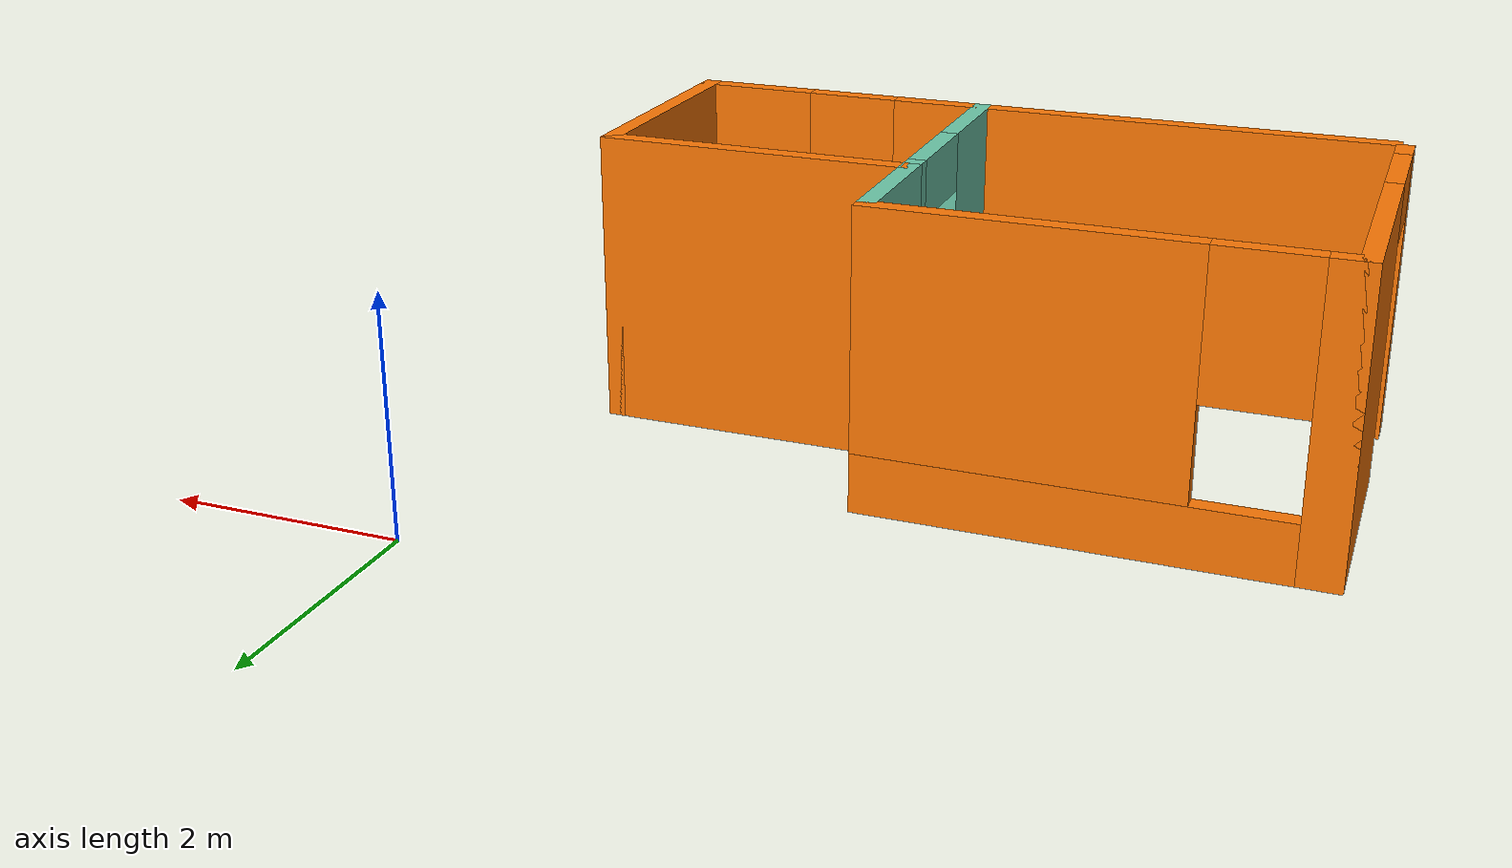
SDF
<?xml version='1.0'?>
<sdf version='1.7'>
  <model name='my_world'>
    <pose>-3.3775 -2.5275 0 0 -0 0</pose>
    <link name='Wall_0'>
      <pose>-3.3025 -0.8025 0 0 -0 1.5708</pose>
      <visual name='Wall_0_Visual_0'>
        <pose>-1.4725 0 1.25 0 -0 0</pose>
        <geometry>
          <box>
            <size>0.305 0.15 2.5</size>
          </box>
        </geometry>
        <material>
          <script>
            <uri>file://media/materials/scripts/gazebo.material</uri>
            <name>Gazebo/Grey</name>
          </script>
          <ambient>0.996078 0.47451 0.0196078 1</ambient>
        </material>
        <meta>
          <layer>0</layer>
        </meta>
      </visual>
      <collision name='Wall_0_Collision_0'>
        <geometry>
          <box>
            <size>0.305 0.15 2.5</size>
          </box>
        </geometry>
        <pose>-1.4725 0 1.25 0 -0 0</pose>
      </collision>
      <visual name='Wall_0_Visual_1'>
        <pose>0.6025 0 1.25 0 -0 0</pose>
        <geometry>
          <box>
            <size>2.045 0.15 2.5</size>
          </box>
        </geometry>
        <material>
          <script>
            <uri>file://media/materials/scripts/gazebo.material</uri>
            <name>Gazebo/Grey</name>
          </script>
          <ambient>0.996078 0.47451 0.0196078 1</ambient>
        </material>
        <meta>
          <layer>0</layer>
        </meta>
      </visual>
      <collision name='Wall_0_Collision_1'>
        <geometry>
          <box>
            <size>2.045 0.15 2.5</size>
          </box>
        </geometry>
        <pose>0.6025 0 1.25 0 -0 0</pose>
      </collision>
      <visual name='Wall_0_Visual_2'>
        <pose>-0.87 0 2.25 0 -0 0</pose>
        <geometry>
          <box>
            <size>0.9 0.15 0.5</size>
          </box>
        </geometry>
        <material>
          <script>
            <uri>file://media/materials/scripts/gazebo.material</uri>
            <name>Gazebo/Grey</name>
          </script>
          <ambient>0.996078 0.47451 0.0196078 1</ambient>
        </material>
        <meta>
          <layer>0</layer>
        </meta>
      </visual>
      <collision name='Wall_0_Collision_2'>
        <geometry>
          <box>
            <size>0.9 0.15 0.5</size>
          </box>
        </geometry>
        <pose>-0.87 0 2.25 0 -0 0</pose>
      </collision>
    </link>
    <link name='Wall_1'>
      <pose>-1.5025 0.7475 0 0 -0 0</pose>
      <visual name='Wall_1_Visual_0'>
        <pose>-1.7025 0 1.25 0 -0 0</pose>
        <geometry>
          <box>
            <size>0.345 0.15 2.5</size>
          </box>
        </geometry>
        <material>
          <script>
            <uri>file://media/materials/scripts/gazebo.material</uri>
            <name>Gazebo/Grey</name>
          </script>
          <ambient>0.996078 0.47451 0.0196078 1</ambient>
        </material>
        <meta>
          <layer>0</layer>
        </meta>
      </visual>
      <collision name='Wall_1_Collision_0'>
        <geometry>
          <box>
            <size>0.345 0.15 2.5</size>
          </box>
        </geometry>
        <pose>-1.7025 0 1.25 0 -0 0</pose>
      </collision>
      <visual name='Wall_1_Visual_1'>
        <pose>0.1725 0 0.25 0 -0 0</pose>
        <geometry>
          <box>
            <size>3.405 0.15 0.5</size>
          </box>
        </geometry>
        <material>
          <script>
            <uri>file://media/materials/scripts/gazebo.material</uri>
            <name>Gazebo/Grey</name>
          </script>
          <ambient>0.996078 0.47451 0.0196078 1</ambient>
        </material>
        <meta>
          <layer>0</layer>
        </meta>
      </visual>
      <collision name='Wall_1_Collision_1'>
        <geometry>
          <box>
            <size>3.405 0.15 0.5</size>
          </box>
        </geometry>
        <pose>0.1725 0 0.25 0 -0 0</pose>
      </collision>
      <visual name='Wall_1_Visual_2'>
        <pose>0.5725 0 1.5 0 -0 0</pose>
        <geometry>
          <box>
            <size>2.605 0.15 2</size>
          </box>
        </geometry>
        <material>
          <script>
            <uri>file://media/materials/scripts/gazebo.material</uri>
            <name>Gazebo/Grey</name>
          </script>
          <ambient>0.996078 0.47451 0.0196078 1</ambient>
        </material>
        <meta>
          <layer>0</layer>
        </meta>
      </visual>
      <collision name='Wall_1_Collision_2'>
        <geometry>
          <box>
            <size>2.605 0.15 2</size>
          </box>
        </geometry>
        <pose>0.5725 0 1.5 0 -0 0</pose>
      </collision>
      <visual name='Wall_1_Visual_3'>
        <pose>-1.13 0 1.9 0 -0 0</pose>
        <geometry>
          <box>
            <size>0.8 0.15 1.2</size>
          </box>
        </geometry>
        <material>
          <script>
            <uri>file://media/materials/scripts/gazebo.material</uri>
            <name>Gazebo/Grey</name>
          </script>
          <ambient>0.996078 0.47451 0.0196078 1</ambient>
        </material>
        <meta>
          <layer>0</layer>
        </meta>
      </visual>
      <collision name='Wall_1_Collision_3'>
        <geometry>
          <box>
            <size>0.8 0.15 1.2</size>
          </box>
        </geometry>
        <pose>-1.13 0 1.9 0 -0 0</pose>
      </collision>
    </link>
    <link name='Wall_2'>
      <collision name='Wall_2_Collision'>
        <geometry>
          <box>
            <size>1.25 0.15 2.5</size>
          </box>
        </geometry>
        <pose>0 0 1.25 0 -0 0</pose>
      </collision>
      <visual name='Wall_2_Visual'>
        <pose>0 0 1.25 0 -0 0</pose>
        <geometry>
          <box>
            <size>1.25 0.15 2.5</size>
          </box>
        </geometry>
        <material>
          <script>
            <uri>file://media/materials/scripts/gazebo.material</uri>
            <name>Gazebo/Grey</name>
          </script>
          <ambient>0.435294 0.796078 0.67451 1</ambient>
        </material>
        <meta>
          <layer>0</layer>
        </meta>
      </visual>
      <pose>0.2975 0.1975 0 0 -0 -1.5708</pose>
    </link>
    <link name='Wall_3'>
      <collision name='Wall_3_Collision'>
        <geometry>
          <box>
            <size>2.75 0.15 2.5</size>
          </box>
        </geometry>
        <pose>0 0 1.25 0 -0 0</pose>
      </collision>
      <visual name='Wall_3_Visual'>
        <pose>0 0 1.25 0 -0 0</pose>
        <geometry>
          <box>
            <size>2.75 0.15 2.5</size>
          </box>
        </geometry>
        <material>
          <script>
            <uri>file://media/materials/scripts/gazebo.material</uri>
            <name>Gazebo/Grey</name>
          </script>
          <ambient>0.996078 0.47451 0.0196078 1</ambient>
        </material>
        <meta>
          <layer>0</layer>
        </meta>
      </visual>
      <pose>1.5975 -0.3525 0 0 -0 0</pose>
    </link>
    <link name='Wall_4'>
      <collision name='Wall_4_Collision'>
        <geometry>
          <box>
            <size>2.25 0.15 2.5</size>
          </box>
        </geometry>
        <pose>0 0 1.25 0 -0 0</pose>
      </collision>
      <visual name='Wall_4_Visual'>
        <pose>0 0 1.25 0 -0 0</pose>
        <geometry>
          <box>
            <size>2.25 0.15 2.5</size>
          </box>
        </geometry>
        <material>
          <script>
            <uri>file://media/materials/scripts/gazebo.material</uri>
            <name>Gazebo/Grey</name>
          </script>
          <ambient>0.996078 0.47451 0.0196078 1</ambient>
        </material>
        <meta>
          <layer>0</layer>
        </meta>
      </visual>
      <pose>2.8975 -1.4025 0 0 -0 -1.5708</pose>
    </link>
    <link name='Wall_5'>
      <pose>-0.1525 -2.4525 0 0 -0 3.14159</pose>
      <visual name='Wall_5_Visual_0'>
        <pose>-2.5825 0 1.25 0 -0 0</pose>
        <geometry>
          <box>
            <size>1.085 0.15 2.5</size>
          </box>
        </geometry>
        <material>
          <script>
            <uri>file://media/materials/scripts/gazebo.material</uri>
            <name>Gazebo/Grey</name>
          </script>
          <ambient>0.996078 0.47451 0.0196078 1</ambient>
        </material>
        <meta>
          <layer>0</layer>
        </meta>
      </visual>
      <collision name='Wall_5_Collision_0'>
        <geometry>
          <box>
            <size>1.085 0.15 2.5</size>
          </box>
        </geometry>
        <pose>-2.5825 0 1.25 0 -0 0</pose>
      </collision>
      <visual name='Wall_5_Visual_1'>
        <pose>0.5425 0 0.25 0 -0 0</pose>
        <geometry>
          <box>
            <size>5.165 0.15 0.5</size>
          </box>
        </geometry>
        <material>
          <script>
            <uri>file://media/materials/scripts/gazebo.material</uri>
            <name>Gazebo/Grey</name>
          </script>
          <ambient>0.996078 0.47451 0.0196078 1</ambient>
        </material>
        <meta>
          <layer>0</layer>
        </meta>
      </visual>
      <collision name='Wall_5_Collision_1'>
        <geometry>
          <box>
            <size>5.165 0.15 0.5</size>
          </box>
        </geometry>
        <pose>0.5425 0 0.25 0 -0 0</pose>
      </collision>
      <visual name='Wall_5_Visual_2'>
        <pose>0.9425 0 1.5 0 -0 0</pose>
        <geometry>
          <box>
            <size>4.365 0.15 2</size>
          </box>
        </geometry>
        <material>
          <script>
            <uri>file://media/materials/scripts/gazebo.material</uri>
            <name>Gazebo/Grey</name>
          </script>
          <ambient>0.996078 0.47451 0.0196078 1</ambient>
        </material>
        <meta>
          <layer>0</layer>
        </meta>
      </visual>
      <collision name='Wall_5_Collision_2'>
        <geometry>
          <box>
            <size>4.365 0.15 2</size>
          </box>
        </geometry>
        <pose>0.9425 0 1.5 0 -0 0</pose>
      </collision>
      <visual name='Wall_5_Visual_3'>
        <pose>-1.64 0 1.9 0 -0 0</pose>
        <geometry>
          <box>
            <size>0.8 0.15 1.2</size>
          </box>
        </geometry>
        <material>
          <script>
            <uri>file://media/materials/scripts/gazebo.material</uri>
            <name>Gazebo/Grey</name>
          </script>
          <ambient>0.996078 0.47451 0.0196078 1</ambient>
        </material>
        <meta>
          <layer>0</layer>
        </meta>
      </visual>
      <collision name='Wall_5_Collision_3'>
        <geometry>
          <box>
            <size>0.8 0.15 1.2</size>
          </box>
        </geometry>
        <pose>-1.64 0 1.9 0 -0 0</pose>
      </collision>
    </link>
    <link name='Wall_7'>
      <pose>0.2975 -1.4025 0 0 -0 -1.5708</pose>
      <visual name='Wall_7_Visual_0'>
        <pose>-0.9875 0 1.25 0 -0 0</pose>
        <geometry>
          <box>
            <size>0.275 0.15 2.5</size>
          </box>
        </geometry>
        <material>
          <script>
            <uri>file://media/materials/scripts/gazebo.material</uri>
            <name>Gazebo/Grey</name>
          </script>
          <ambient>0.435294 0.796078 0.67451 1</ambient>
        </material>
        <meta>
          <layer>0</layer>
        </meta>
      </visual>
      <collision name='Wall_7_Collision_0'>
        <geometry>
          <box>
            <size>0.275 0.15 2.5</size>
          </box>
        </geometry>
        <pose>-0.9875 0 1.25 0 -0 0</pose>
      </collision>
      <visual name='Wall_7_Visual_1'>
        <pose>0.5875 0 1.25 0 -0 0</pose>
        <geometry>
          <box>
            <size>1.075 0.15 2.5</size>
          </box>
        </geometry>
        <material>
          <script>
            <uri>file://media/materials/scripts/gazebo.material</uri>
            <name>Gazebo/Grey</name>
          </script>
          <ambient>0.435294 0.796078 0.67451 1</ambient>
        </material>
        <meta>
          <layer>0</layer>
        </meta>
      </visual>
      <collision name='Wall_7_Collision_1'>
        <geometry>
          <box>
            <size>1.075 0.15 2.5</size>
          </box>
        </geometry>
        <pose>0.5875 0 1.25 0 -0 0</pose>
      </collision>
      <visual name='Wall_7_Visual_2'>
        <pose>-0.4 0 2.25 0 -0 0</pose>
        <geometry>
          <box>
            <size>0.9 0.15 0.5</size>
          </box>
        </geometry>
        <material>
          <script>
            <uri>file://media/materials/scripts/gazebo.material</uri>
            <name>Gazebo/Grey</name>
          </script>
          <ambient>0.435294 0.796078 0.67451 1</ambient>
        </material>
        <meta>
          <layer>0</layer>
        </meta>
      </visual>
      <collision name='Wall_7_Collision_2'>
        <geometry>
          <box>
            <size>0.9 0.15 0.5</size>
          </box>
        </geometry>
        <pose>-0.4 0 2.25 0 -0 0</pose>
      </collision>
    </link>
    <static>1</static>
  </model>
</sdf>
